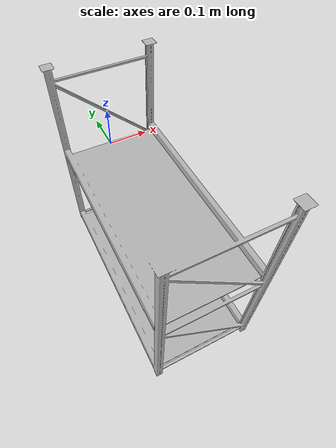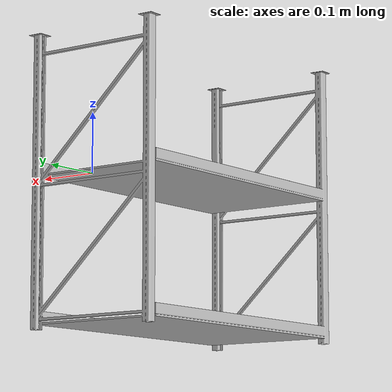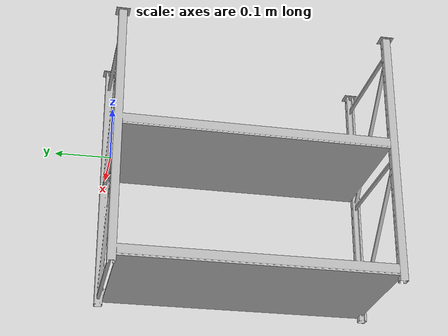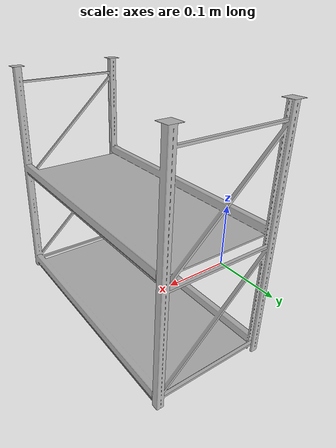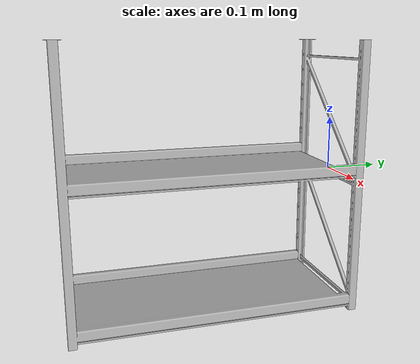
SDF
<?xml version="1.0" ?>
<sdf version="1.6">
  <model name="shelf2">
    <pose>0 0 0.15 0 0 0</pose>
    <static>1</static>
    <link name="link">
      <inertial>
        <mass>2</mass>
        <inertia>
          <ixx>0.041666667</ixx>
          <ixy>0</ixy>
          <ixz>0</ixz>
          <iyy>0.056666667</iyy>
          <iyz>0</iyz>
          <izz>0.068333333</izz>
        </inertia>
      </inertial>
      <collision name="collision">
        <geometry>
          <box>
            <size>0.5 0.4 0.3</size>
          </box>
        </geometry>
        <surface>
          <friction>
            <ode>
              <mu>1.0</mu>
              <mu2>1.0</mu2>
            </ode>
          </friction>
          <contact>
            <ode>
              <kp>10000000.0</kp>
              <kd>1.0</kd>
              <min_depth>0.001</min_depth>
              <max_vel>0.1</max_vel>
            </ode>
          </contact>
        </surface>
      </collision>
      <visual name="visual">
        <pose>0 0 -0.15 0 0 0</pose>
        <geometry>
          <mesh>
            <uri>/home/computing/catkin_ws/src/gazebo_sensors_tutorial/models/shelf2/meshes/STORAGE RACK.stl</uri>
            <scale>0.002 0.002 0.0016</scale>

          </mesh>
        </geometry>
        <material>
           <script>
            <uri>/home/computing/catkin_ws/src/gazebo_sensors_tutorial/models/shelf2/materials/scripts</uri>
            <uri>/home/computing/catkin_ws/src/gazebo_sensors_tutorial/models/shelf2/materials/textures</uri>

            <name>testing/material</name>
           </script>
        </material>
      </visual>
    </link>
  </model>
</sdf>
